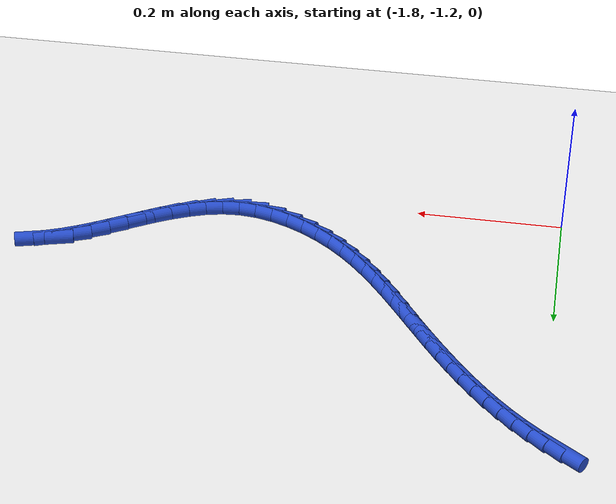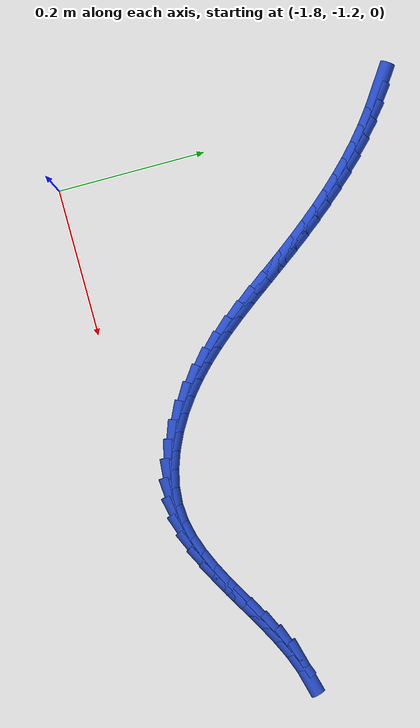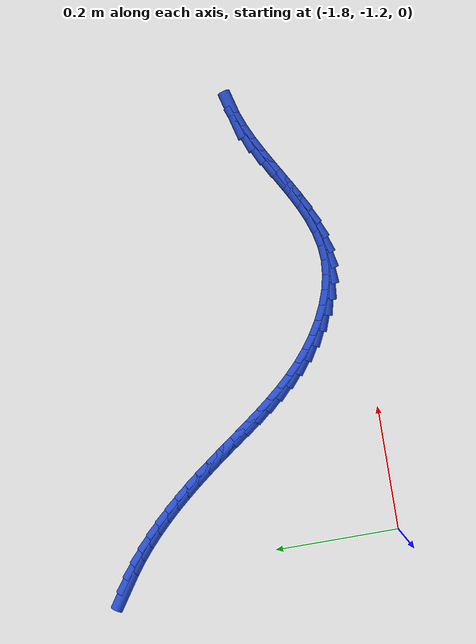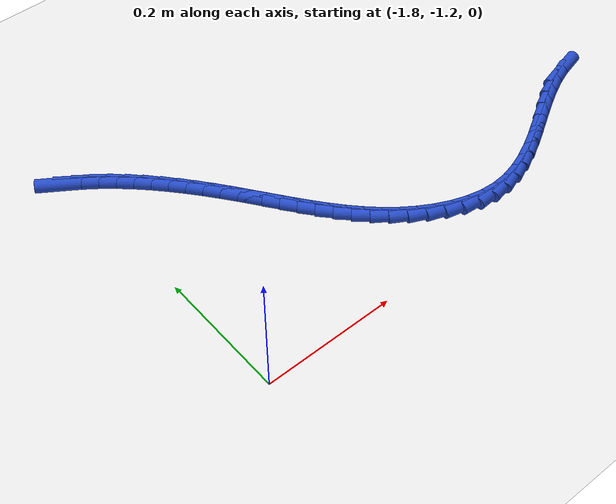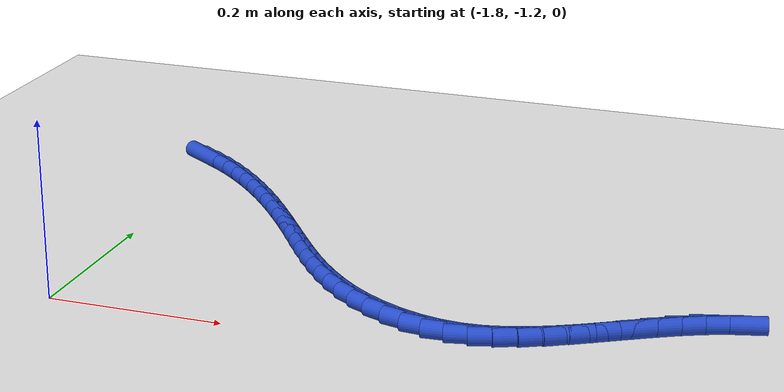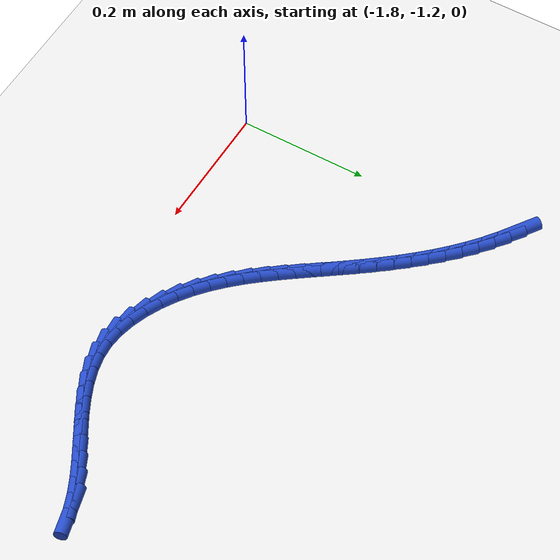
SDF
<sdf version="1.6">
 <world name="default">
  <model name="ground_plane">
   <static>1</static>
   <link name="link">
    <collision name="collision">
     <geometry><plane><normal>0 0 1</normal><size>100 100</size></plane></geometry>
     <surface><friction><ode><mu>100</mu><mu2>50</mu2></ode></friction></surface>
    </collision>
    <visual name="visual">
     <cast_shadows>0</cast_shadows>
     <geometry><plane><normal>0 0 1</normal><size>100 100</size></plane></geometry>
     <material>
      <script><uri>file://media/materials/scripts/gazebo.material</uri><name>Gazebo/WhiteGlow</name></script>
     </material>
    </visual>
   </link>
  </model>
  <model name="line">
   <link name="link_184">
    <pose>-1.8164926211519499 -0.7543225254611942 0.01 0 1.57 -0.5920976039299044</pose>
    <collision name="collision">
     <geometry><cylinder><radius>0.01</radius><length>0.08</length></cylinder></geometry>
    </collision>
    <visual name="visual">
     <material>
      <script><name>Gazebo/Blue</name><uri>file://media/materials/scripts/gazebo.material</uri></script>
     </material>
     <geometry><cylinder><radius>0.01</radius><length>0.08</length></cylinder></geometry>
    </visual>
   </link>
   <link name="link_185">
    <pose>-1.7952880512855758 -0.7685846744672514 0.01 0 1.57 -0.6464580128802756</pose>
    <collision name="collision">
     <geometry><cylinder><radius>0.01</radius><length>0.08</length></cylinder></geometry>
    </collision>
    <visual name="visual">
     <material>
      <script><name>Gazebo/Blue</name><uri>file://media/materials/scripts/gazebo.material</uri></script>
     </material>
     <geometry><cylinder><radius>0.01</radius><length>0.08</length></cylinder></geometry>
    </visual>
   </link>
   <link name="link_186">
    <pose>-1.7750804030577376 -0.7838339810411669 0.01 0 1.57 -0.6969918451843578</pose>
    <collision name="collision">
     <geometry><cylinder><radius>0.01</radius><length>0.08</length></cylinder></geometry>
    </collision>
    <visual name="visual">
     <material>
      <script><name>Gazebo/Blue</name><uri>file://media/materials/scripts/gazebo.material</uri></script>
     </material>
     <geometry><cylinder><radius>0.01</radius><length>0.08</length></cylinder></geometry>
    </visual>
   </link>
   <link name="link_187">
    <pose>-1.7557855268263578 -0.7999868617194392 0.01 0 1.57 -0.7432837053316128</pose>
    <collision name="collision">
     <geometry><cylinder><radius>0.01</radius><length>0.08</length></cylinder></geometry>
    </collision>
    <visual name="visual">
     <material>
      <script><name>Gazebo/Blue</name><uri>file://media/materials/scripts/gazebo.material</uri></script>
     </material>
     <geometry><cylinder><radius>0.01</radius><length>0.08</length></cylinder></geometry>
    </visual>
   </link>
   <link name="link_188">
    <pose>-1.7373192729493576 -0.8169597330385672 0.01 0 1.57 -0.7850452903019837</pose>
    <collision name="collision">
     <geometry><cylinder><radius>0.01</radius><length>0.08</length></cylinder></geometry>
    </collision>
    <visual name="visual">
     <material>
      <script><name>Gazebo/Blue</name><uri>file://media/materials/scripts/gazebo.material</uri></script>
     </material>
     <geometry><cylinder><radius>0.01</radius><length>0.08</length></cylinder></geometry>
    </visual>
   </link>
   <link name="link_189">
    <pose>-1.7195974917846584 -0.8346690115350492 0.01 0 1.57 -0.822098599402062</pose>
    <collision name="collision">
     <geometry><cylinder><radius>0.01</radius><length>0.08</length></cylinder></geometry>
    </collision>
    <visual name="visual">
     <material>
      <script><name>Gazebo/Blue</name><uri>file://media/materials/scripts/gazebo.material</uri></script>
     </material>
     <geometry><cylinder><radius>0.01</radius><length>0.08</length></cylinder></geometry>
    </visual>
   </link>
   <link name="link_190">
    <pose>-1.7025360336901816 -0.8530311137453838 0.01 0 1.57 -0.854353901082504</pose>
    <collision name="collision">
     <geometry><cylinder><radius>0.01</radius><length>0.08</length></cylinder></geometry>
    </collision>
    <visual name="visual">
     <material>
      <script><name>Gazebo/Blue</name><uri>file://media/materials/scripts/gazebo.material</uri></script>
     </material>
     <geometry><cylinder><radius>0.01</radius><length>0.08</length></cylinder></geometry>
    </visual>
   </link>
   <link name="link_191">
    <pose>-1.6860507490238483 -0.8719624562060693 0.01 0 1.57 -0.8817862960565719</pose>
    <collision name="collision">
     <geometry><cylinder><radius>0.01</radius><length>0.08</length></cylinder></geometry>
    </collision>
    <visual name="visual">
     <material>
      <script><name>Gazebo/Blue</name><uri>file://media/materials/scripts/gazebo.material</uri></script>
     </material>
     <geometry><cylinder><radius>0.01</radius><length>0.08</length></cylinder></geometry>
    </visual>
   </link>
   <link name="link_192">
    <pose>-1.6700574881435815 -0.8913794554536054 0.01 0 1.57 -0.9044136043967809</pose>
    <collision name="collision">
     <geometry><cylinder><radius>0.01</radius><length>0.08</length></cylinder></geometry>
    </collision>
    <visual name="visual">
     <material>
      <script><name>Gazebo/Blue</name><uri>file://media/materials/scripts/gazebo.material</uri></script>
     </material>
     <geometry><cylinder><radius>0.01</radius><length>0.08</length></cylinder></geometry>
    </visual>
   </link>
   <link name="link_193">
    <pose>-1.6544721014073012 -0.9111985280244895 0.01 0 1.57 -0.9222771696566259</pose>
    <collision name="collision">
     <geometry><cylinder><radius>0.01</radius><length>0.08</length></cylinder></geometry>
    </collision>
    <visual name="visual">
     <material>
      <script><name>Gazebo/Blue</name><uri>file://media/materials/scripts/gazebo.material</uri></script>
     </material>
     <geometry><cylinder><radius>0.01</radius><length>0.08</length></cylinder></geometry>
    </visual>
   </link>
   <link name="link_194">
    <pose>-1.6392104391729294 -0.931336090455221 0.01 0 1.57 -0.935425341072902</pose>
    <collision name="collision">
     <geometry><cylinder><radius>0.01</radius><length>0.08</length></cylinder></geometry>
    </collision>
    <visual name="visual">
     <material>
      <script><name>Gazebo/Blue</name><uri>file://media/materials/scripts/gazebo.material</uri></script>
     </material>
     <geometry><cylinder><radius>0.01</radius><length>0.08</length></cylinder></geometry>
    </visual>
   </link>
   <link name="link_195">
    <pose>-1.624188334820271 -0.9517085427655687 0.01 0 1.57 -0.9426040490599976</pose>
    <collision name="collision">
     <geometry><cylinder><radius>0.01</radius><length>0.08</length></cylinder></geometry>
    </collision>
    <visual name="visual">
     <material>
      <script><name>Gazebo/Blue</name><uri>file://media/materials/scripts/gazebo.material</uri></script>
     </material>
     <geometry><cylinder><radius>0.01</radius><length>0.08</length></cylinder></geometry>
    </visual>
   </link>
   <link name="link_196">
    <pose>-1.6092977733832179 -0.9722090847178274 0.01 0 1.57 -0.9399630044935786</pose>
    <collision name="collision">
     <geometry><cylinder><radius>0.01</radius><length>0.08</length></cylinder></geometry>
    </collision>
    <visual name="visual">
     <material>
      <script><name>Gazebo/Blue</name><uri>file://media/materials/scripts/gazebo.material</uri></script>
     </material>
     <geometry><cylinder><radius>0.01</radius><length>0.08</length></cylinder></geometry>
    </visual>
   </link>
   <link name="link_197">
    <pose>-1.5943594499963964 -0.9926615635068501 0.01 0 1.57 -0.9267530050127559</pose>
    <collision name="collision">
     <geometry><cylinder><radius>0.01</radius><length>0.08</length></cylinder></geometry>
    </collision>
    <visual name="visual">
     <material>
      <script><name>Gazebo/Blue</name><uri>file://media/materials/scripts/gazebo.material</uri></script>
     </material>
     <geometry><cylinder><radius>0.01</radius><length>0.08</length></cylinder></geometry>
    </visual>
   </link>
   <link name="link_198">
    <pose>-1.5791807964684734 -1.012876923437774 0.01 0 1.57 -0.9028646707194482</pose>
    <collision name="collision">
     <geometry><cylinder><radius>0.01</radius><length>0.08</length></cylinder></geometry>
    </collision>
    <visual name="visual">
     <material>
      <script><name>Gazebo/Blue</name><uri>file://media/materials/scripts/gazebo.material</uri></script>
     </material>
     <geometry><cylinder><radius>0.01</radius><length>0.08</length></cylinder></geometry>
    </visual>
   </link>
   <link name="link_199">
    <pose>-1.5635692446081135 -1.0326661088157343 0.01 0 1.57 -0.8681473764599654</pose>
    <collision name="collision">
     <geometry><cylinder><radius>0.01</radius><length>0.08</length></cylinder></geometry>
    </collision>
    <visual name="visual">
     <material>
      <script><name>Gazebo/Blue</name><uri>file://media/materials/scripts/gazebo.material</uri></script>
     </material>
     <geometry><cylinder><radius>0.01</radius><length>0.08</length></cylinder></geometry>
    </visual>
   </link>
   <link name="link_200">
    <pose>-1.547332226223983 -1.0518400639458676 0.01 0 1.57 -0.8224912730070991</pose>
    <collision name="collision">
     <geometry><cylinder><radius>0.01</radius><length>0.08</length></cylinder></geometry>
    </collision>
    <visual name="visual">
     <material>
      <script><name>Gazebo/Blue</name><uri>file://media/materials/scripts/gazebo.material</uri></script>
     </material>
     <geometry><cylinder><radius>0.01</radius><length>0.08</length></cylinder></geometry>
    </visual>
   </link>
   <link name="link_201">
    <pose>-1.5302771731247484 -1.0702097331333091 0.01 0 1.57 -0.7659511266900628</pose>
    <collision name="collision">
     <geometry><cylinder><radius>0.01</radius><length>0.08</length></cylinder></geometry>
    </collision>
    <visual name="visual">
     <material>
      <script><name>Gazebo/Blue</name><uri>file://media/materials/scripts/gazebo.material</uri></script>
     </material>
     <geometry><cylinder><radius>0.01</radius><length>0.08</length></cylinder></geometry>
    </visual>
   </link>
   <link name="link_202">
    <pose>-1.5122115171190746 -1.0875860606831964 0.01 0 1.57 -0.6989067070967323</pose>
    <collision name="collision">
     <geometry><cylinder><radius>0.01</radius><length>0.08</length></cylinder></geometry>
    </collision>
    <visual name="visual">
     <material>
      <script><name>Gazebo/Blue</name><uri>file://media/materials/scripts/gazebo.material</uri></script>
     </material>
     <geometry><cylinder><radius>0.01</radius><length>0.08</length></cylinder></geometry>
    </visual>
   </link>
   <link name="link_203">
    <pose>-1.4929426900156273 -1.103779990900665 0.01 0 1.57 -0.6222356770407567</pose>
    <collision name="collision">
     <geometry><cylinder><radius>0.01</radius><length>0.08</length></cylinder></geometry>
    </collision>
    <visual name="visual">
     <material>
      <script><name>Gazebo/Blue</name><uri>file://media/materials/scripts/gazebo.material</uri></script>
     </material>
     <geometry><cylinder><radius>0.01</radius><length>0.08</length></cylinder></geometry>
    </visual>
   </link>
   <link name="link_204">
    <pose>-1.4722781236230726 -1.1186024680908504 0.01 0 1.57 -0.5377301604311681</pose>
    <collision name="collision">
     <geometry><cylinder><radius>0.01</radius><length>0.08</length></cylinder></geometry>
    </collision>
    <visual name="visual">
     <material>
      <script><name>Gazebo/Blue</name><uri>file://media/materials/scripts/gazebo.material</uri></script>
     </material>
     <geometry><cylinder><radius>0.01</radius><length>0.08</length></cylinder></geometry>
    </visual>
   </link>
   <link name="link_205">
    <pose>-1.4501113537909998 -1.131821585398438 0.01 0 1.57 -0.446281054729283</pose>
    <collision name="collision">
     <geometry><cylinder><radius>0.01</radius><length>0.08</length></cylinder></geometry>
    </collision>
    <visual name="visual">
     <material>
      <script><name>Gazebo/Blue</name><uri>file://media/materials/scripts/gazebo.material</uri></script>
     </material>
     <geometry><cylinder><radius>0.01</radius><length>0.08</length></cylinder></geometry>
    </visual>
   </link>
   <link name="link_206">
    <pose>-1.4267455727720268 -1.1430015633964141 0.01 0 1.57 -0.34387236626283857</pose>
    <collision name="collision">
     <geometry><cylinder><radius>0.01</radius><length>0.08</length></cylinder></geometry>
    </collision>
    <visual name="visual">
     <material>
      <script><name>Gazebo/Blue</name><uri>file://media/materials/scripts/gazebo.material</uri></script>
     </material>
     <geometry><cylinder><radius>0.01</radius><length>0.08</length></cylinder></geometry>
    </visual>
   </link>
   <link name="link_207">
    <pose>-1.4026056730769632 -1.1516460564260926 0.01 0 1.57 -0.22529872842411236</pose>
    <collision name="collision">
     <geometry><cylinder><radius>0.01</radius><length>0.08</length></cylinder></geometry>
    </collision>
    <visual name="visual">
     <material>
      <script><name>Gazebo/Blue</name><uri>file://media/materials/scripts/gazebo.material</uri></script>
     </material>
     <geometry><cylinder><radius>0.01</radius><length>0.08</length></cylinder></geometry>
    </visual>
   </link>
   <link name="link_208">
    <pose>-1.3781165669982016 -1.157258708984138 0.01 0 1.57 -0.08517508256695039</pose>
    <collision name="collision">
     <geometry><cylinder><radius>0.01</radius><length>0.08</length></cylinder></geometry>
    </collision>
    <visual name="visual">
     <material>
      <script><name>Gazebo/Blue</name><uri>file://media/materials/scripts/gazebo.material</uri></script>
     </material>
     <geometry><cylinder><radius>0.01</radius><length>0.08</length></cylinder></geometry>
    </visual>
   </link>
   <link name="link_209">
    <pose>-1.353703166828138 -1.159343165567215 0.01 0 1.57 0.07326475006229993</pose>
    <collision name="collision">
     <geometry><cylinder><radius>0.01</radius><length>0.08</length></cylinder></geometry>
    </collision>
    <visual name="visual">
     <material>
      <script><name>Gazebo/Blue</name><uri>file://media/materials/scripts/gazebo.material</uri></script>
     </material>
     <geometry><cylinder><radius>0.01</radius><length>0.08</length></cylinder></geometry>
    </visual>
   </link>
   <link name="link_210">
    <pose>-1.329708200013835 -1.1575820280928908 0.01 0 1.57 0.21675258740057515</pose>
    <collision name="collision">
     <geometry><cylinder><radius>0.01</radius><length>0.08</length></cylinder></geometry>
    </collision>
    <visual name="visual">
     <material>
      <script><name>Gazebo/Blue</name><uri>file://media/materials/scripts/gazebo.material</uri></script>
     </material>
     <geometry><cylinder><radius>0.01</radius><length>0.08</length></cylinder></geometry>
    </visual>
   </link>
   <link name="link_211">
    <pose>-1.3061375040375824 -1.1523914760498788 0.01 0 1.57 0.3323122901918606</pose>
    <collision name="collision">
     <geometry><cylinder><radius>0.01</radius><length>0.08</length></cylinder></geometry>
    </collision>
    <visual name="visual">
     <material>
      <script><name>Gazebo/Blue</name><uri>file://media/materials/scripts/gazebo.material</uri></script>
     </material>
     <geometry><cylinder><radius>0.01</radius><length>0.08</length></cylinder></geometry>
    </visual>
   </link>
   <link name="link_212">
    <pose>-1.282910605977787 -1.1443756297475365 0.01 0 1.57 0.41935060590239326</pose>
    <collision name="collision">
     <geometry><cylinder><radius>0.01</radius><length>0.08</length></cylinder></geometry>
    </collision>
    <visual name="visual">
     <material>
      <script><name>Gazebo/Blue</name><uri>file://media/materials/scripts/gazebo.material</uri></script>
     </material>
     <geometry><cylinder><radius>0.01</radius><length>0.08</length></cylinder></geometry>
    </visual>
   </link>
   <link name="link_213">
    <pose>-1.259947032867032 -1.1341386095950006 0.01 0 1.57 0.47979908647067643</pose>
    <collision name="collision">
     <geometry><cylinder><radius>0.01</radius><length>0.08</length></cylinder></geometry>
    </collision>
    <visual name="visual">
     <material>
      <script><name>Gazebo/Blue</name><uri>file://media/materials/scripts/gazebo.material</uri></script>
     </material>
     <geometry><cylinder><radius>0.01</radius><length>0.08</length></cylinder></geometry>
    </visual>
   </link>
   <link name="link_214">
    <pose>-1.2371663117379013 -1.1222845360014089 0.01 0 1.57 0.5160810822217767</pose>
    <collision name="collision">
     <geometry><cylinder><radius>0.01</radius><length>0.08</length></cylinder></geometry>
    </collision>
    <visual name="visual">
     <material>
      <script><name>Gazebo/Blue</name><uri>file://media/materials/scripts/gazebo.material</uri></script>
     </material>
     <geometry><cylinder><radius>0.01</radius><length>0.08</length></cylinder></geometry>
    </visual>
   </link>
   <link name="link_215">
    <pose>-1.2144879696229773 -1.1094175293758968 0.01 0 1.57 0.5300337740209478</pose>
    <collision name="collision">
     <geometry><cylinder><radius>0.01</radius><length>0.08</length></cylinder></geometry>
    </collision>
    <visual name="visual">
     <material>
      <script><name>Gazebo/Blue</name><uri>file://media/materials/scripts/gazebo.material</uri></script>
     </material>
     <geometry><cylinder><radius>0.01</radius><length>0.08</length></cylinder></geometry>
    </visual>
   </link>
   <link name="link_216">
    <pose>-1.1918315335548457 -1.0961417101276025 0.01 0 1.57 0.5224753881054959</pose>
    <collision name="collision">
     <geometry><cylinder><radius>0.01</radius><length>0.08</length></cylinder></geometry>
    </collision>
    <visual name="visual">
     <material>
      <script><name>Gazebo/Blue</name><uri>file://media/materials/scripts/gazebo.material</uri></script>
     </material>
     <geometry><cylinder><radius>0.01</radius><length>0.08</length></cylinder></geometry>
    </visual>
   </link>
   <link name="link_217">
    <pose>-1.1691165305660873 -1.0830611986656613 0.01 0 1.57 0.493095002778613</pose>
    <collision name="collision">
     <geometry><cylinder><radius>0.01</radius><length>0.08</length></cylinder></geometry>
    </collision>
    <visual name="visual">
     <material>
      <script><name>Gazebo/Blue</name><uri>file://media/materials/scripts/gazebo.material</uri></script>
     </material>
     <geometry><cylinder><radius>0.01</radius><length>0.08</length></cylinder></geometry>
    </visual>
   </link>
   <link name="link_218">
    <pose>-1.1462624876892868 -1.0707801153992111 0.01 0 1.57 0.4405303847696673</pose>
    <collision name="collision">
     <geometry><cylinder><radius>0.01</radius><length>0.08</length></cylinder></geometry>
    </collision>
    <visual name="visual">
     <material>
      <script><name>Gazebo/Blue</name><uri>file://media/materials/scripts/gazebo.material</uri></script>
     </material>
     <geometry><cylinder><radius>0.01</radius><length>0.08</length></cylinder></geometry>
    </visual>
   </link>
   <link name="link_219">
    <pose>-1.123188931957028 -1.059902580737388 0.01 0 1.57 0.3626953160637459</pose>
    <collision name="collision">
     <geometry><cylinder><radius>0.01</radius><length>0.08</length></cylinder></geometry>
    </collision>
    <visual name="visual">
     <material>
      <script><name>Gazebo/Blue</name><uri>file://media/materials/scripts/gazebo.material</uri></script>
     </material>
     <geometry><cylinder><radius>0.01</radius><length>0.08</length></cylinder></geometry>
    </visual>
   </link>
   <link name="link_220">
    <pose>-1.0998153904018932 -1.051032715089329 0.01 0 1.57 0.2589393881981204</pose>
    <collision name="collision">
     <geometry><cylinder><radius>0.01</radius><length>0.08</length></cylinder></geometry>
    </collision>
    <visual name="visual">
     <material>
      <script><name>Gazebo/Blue</name><uri>file://media/materials/scripts/gazebo.material</uri></script>
     </material>
     <geometry><cylinder><radius>0.01</radius><length>0.08</length></cylinder></geometry>
    </visual>
   </link>
  </model>
 </world>
</sdf>
